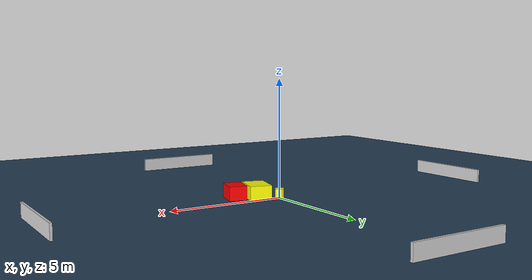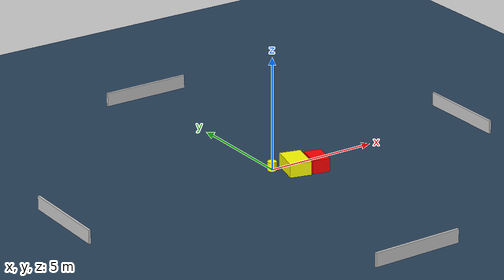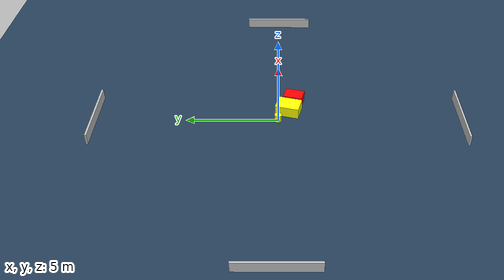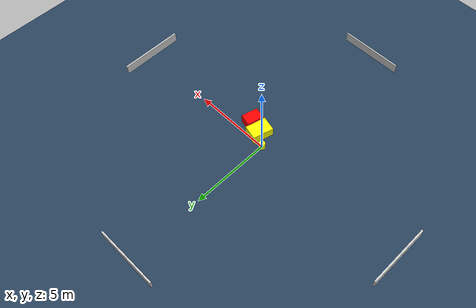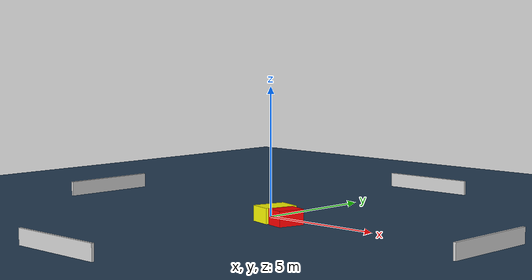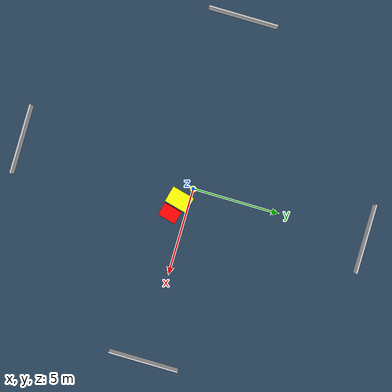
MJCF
<?xml version="1.0" ?>
<mujoco model="generated_environment">
  <option timestep="0.01" integrator="RK4" cone="elliptic"/>
  <default>
    <geom density="1"/>
  </default>
  <asset>
    <texture builtin="gradient" height="3072" name="skybox" rgb1="0.3 0.5 0.7" rgb2="0 0 0" type="skybox" width="512"/>
    <texture builtin="checker" height="300" name="groundplane" rgb1="0.2 0.3 0.4" rgb2="0.1 0.2 0.3" type="2d" width="300"/>
    <material name="groundplane" reflectance="0.2" texrepeat="5 5" texture="groundplane"/>
  </asset>
  <worldbody>
    <light dir="0 0 -1" directional="true" pos="0 0 1.5"/>
    <geom condim="3" friction="0.5 0.005 0.001" material="groundplane" name="floor" pos="0 0 0" size="0 0 0.05" type="plane"/>
    <body name="walls">
      <geom name="wall_1" condim="4" pos="-10.0 0.0 0.3" rgba="0.800000011920929 0.800000011920929 0.800000011920929 1.0" size="0.05 2.0 0.3" type="box"/>
      <geom name="wall_2" condim="4" pos="10.0 0.0 0.3" rgba="0.800000011920929 0.800000011920929 0.800000011920929 1.0" size="0.05 2.0 0.3" type="box"/>
      <geom name="wall_3" condim="4" pos="0.0 -10.0 0.3" rgba="0.800000011920929 0.800000011920929 0.800000011920929 1.0" size="2.0 0.05 0.3" type="box"/>
      <geom name="wall_4" condim="4" pos="0.0 10.0 0.3" rgba="0.800000011920929 0.800000011920929 0.800000011920929 1.0" size="2.0 0.05 0.3" type="box"/>
    </body>
    <body name="robot">
      <joint name="joint_x" type="slide" pos="0 0 0" axis="1 0 0"/>
      <joint name="joint_y" type="slide" pos="0 0 0" axis="0 1 0"/>
      <geom name="robot" type="cylinder" pos="0.0 0.0 0.2" size="0.2 0.2 0.0" mass="5.0" friction="1.0 0.005 0.0001" condim="4" rgba="1.0 1.0 0.0 1.0"/>
    </body>
    <body name="obstacle_1_movable">
      <geom name="obstacle_1_movable" condim="4" pos="0.780938513278408 -0.5743378465960693 0.3" euler="0 0 345.7195712614912" friction="0.0 0.005 0.001" rgba="1.0 1.0 0.0 1.0" size="0.47123438371593324 0.659622126166284 0.3" type="box" mass="0.1"/>
      <joint type="free"/>
    </body>
    <body name="obstacle_2_static">
      <geom name="obstacle_2_static" condim="4" pos="1.6610500171287026 -0.8797103758910592 0.3" euler="0 0 345.8364373309899" friction="0.0 0.005 0.001" rgba="1.0 0.0 0.0 1.0" size="0.37839066319377906 0.5297734767259419 0.3" type="box"/>
    </body>
  </worldbody>
  <actuator>
    <motor name="actuator_x" joint="joint_x" gear="1" ctrlrange="-1 1"/>
    <motor name="actuator_y" joint="joint_y" gear="1" ctrlrange="-1 1"/>
  </actuator>
</mujoco>
